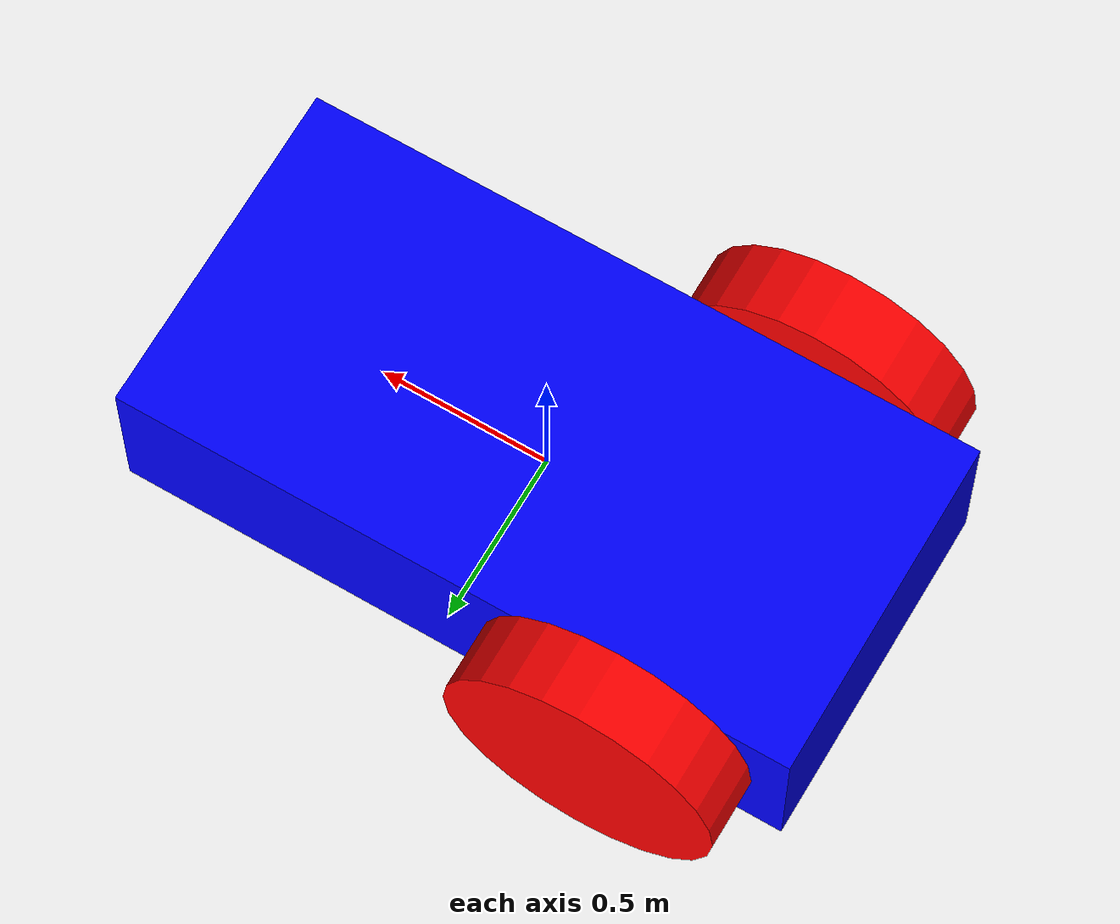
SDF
<?xml version="1.0"?>
<sdf version="1.10">
    <model name="clown_car" canonical_link="base_link">
        <pose>0 0 0 0 0 0</pose>

        <plugin filename="gz-sim-diff-drive-system" name="gz::sim::systems::DiffDrive">
            <left_joint>left_wheel_joint</left_joint>
            <right_joint>right_wheel_joint</right_joint>
            <wheel_separation>1.2</wheel_separation>
            <wheel_radius>0.4</wheel_radius>
            <odom_publish_frequency>10</odom_publish_frequency>
            <topic>/cmd_vel</topic>
            <odom_topic>/odom</odom_topic>
            <tf_topic>/tf</tf_topic>
            <frame_id>odom</frame_id>
            <child_frame_id>base_footprint</child_frame_id>
        </plugin>

        <plugin filename="gz-sim-joint-state-publisher-system" name="gz::sim::systems::JointStatePublisher">
            <topic>/joint_states</topic>
            <joint_name>left_wheel_joint</joint_name>
            <joint_name>right_wheel_joint</joint_name>
            <joint_name>caster_wheel</joint_name>
        </plugin>

        <link name="base_footprint">
            <inertial>
                <mass>0.01</mass>
                <inertia>
                    <ixx>0.0001</ixx>
                    <ixy>0</ixy>
                    <ixz>0</ixz>
                    <iyy>0.0001</iyy>
                    <iyz>0</iyz>
                    <izz>0.0001</izz>
                </inertia>
            </inertial>
        </link>

        <link name="base_link">
            <pose>0 0 0 0 0 0</pose>
            <inertial>
                <mass>1.14395</mass>
                <inertia>
                    <ixx>0.095329</ixx>
                    <ixy>0</ixy>
                    <ixz>0</ixz>
                    <iyy>0.381317</iyy>
                    <iyz>0</iyz>
                    <izz>0.476646</izz>
                </inertia>
            </inertial>
            <visual name="visual">
                <geometry>
                    <box>
                        <size>2.0 1.0 0.5</size>
                    </box>
                </geometry>
                <material>
                    <ambient>0 0 1 1</ambient>
                    <diffuse>0 0 1 1</diffuse>
                    <specular>0 0 1 1</specular>
                </material>
            </visual>
            <collision name="collision">
                <geometry>
                    <box>
                        <size>2.0 1.0 0.5</size>
                    </box>
                </geometry>
            </collision>
        </link>

        <link name="imu_link">
            <sensor name="imu_sensor" type="imu">
                <always_on>1</always_on>
                <update_rate>100</update_rate>
                <visualize>true</visualize>
                <topic>/imu</topic>
                <gz_frame_id>imu_link</gz_frame_id>
            </sensor>
        </link>

        <link name="lidar_link">
            <sensor name="gpu_lidar" type="gpu_lidar">
                <pose>0 0 0 0 0 0</pose>
                <topic>/scan</topic>
                <update_rate>10</update_rate>
                <gz_frame_id>base_link</gz_frame_id>
                <ray>
                    <scan>
                        <horizontal>
                            <samples>640</samples>
                            <resolution>1</resolution>
                            <min_angle>-1.396263</min_angle>
                            <max_angle>1.396263</max_angle>
                        </horizontal>
                        <vertical>
                            <samples>1</samples>
                            <resolution>0.01</resolution>
                            <min_angle>0</min_angle>
                            <max_angle>0</max_angle>
                        </vertical>
                    </scan>
                    <range>
                        <min>0.08</min>
                        <max>10.0</max>
                        <resolution>0.01</resolution>
                    </range>
                </ray>
                <always_on>1</always_on>
                <visualize>true</visualize>
            </sensor>
        </link>

        <link name="left_wheel">
            <pose>-0.5 0.6 0 -1.5707 0 0</pose>
            <inertial>
                <mass>1</mass>
                <inertia>
                    <ixx>0.043333</ixx>
                    <ixy>0</ixy>
                    <ixz>0</ixz>
                    <iyy>0.043333</iyy>
                    <iyz>0</iyz>
                    <izz>0.08</izz>
                </inertia>
            </inertial>
            <visual name="visual">
                <geometry>
                    <cylinder>
                        <radius>0.4</radius>
                        <length>0.2</length>
                    </cylinder>
                </geometry>
                <material>
                    <ambient>1 0 0 1</ambient>
                    <diffuse>1 0 0 1</diffuse>
                    <specular>1 0 0 1</specular>
                </material>
            </visual>
            <collision name="collision">
                <geometry>
                    <cylinder>
                        <radius>0.4</radius>
                        <length>0.2</length>
                    </cylinder>
                </geometry>
            </collision>
        </link>

        <link name="right_wheel">
            <pose>-0.5 -0.6 0 -1.5707 0 0</pose>
            <inertial>
                <mass>1</mass>
                <inertia>
                    <ixx>0.043333</ixx>
                    <ixy>0</ixy>
                    <ixz>0</ixz>
                    <iyy>0.043333</iyy>
                    <iyz>0</iyz>
                    <izz>0.08</izz>
                </inertia>
            </inertial>
            <visual name="visual">
                <geometry>
                    <cylinder>
                        <radius>0.4</radius>
                        <length>0.2</length>
                    </cylinder>
                </geometry>
                <material>
                    <ambient>1 0 0 1</ambient>
                    <diffuse>1 0 0 1</diffuse>
                    <specular>1 0 0 1</specular>
                </material>
            </visual>
            <collision name="collision">
                <geometry>
                    <cylinder>
                        <radius>0.4</radius>
                        <length>0.2</length>
                    </cylinder>
                </geometry>
            </collision>
        </link>

        <link name="caster">
            <pose>0.8 0 -0.2 0 0 0</pose>
            <inertial>
                <mass>1</mass>
                <inertia>
                    <ixx>0.016</ixx>
                    <ixy>0</ixy>
                    <ixz>0</ixz>
                    <iyy>0.016</iyy>
                    <iyz>0</iyz>
                    <izz>0.016</izz>
                </inertia>
            </inertial>
            <visual name="visual">
                <geometry>
                    <sphere>
                        <radius>0.2</radius>
                    </sphere>
                </geometry>
                <material>
                    <ambient>0 1 0 1</ambient>
                    <diffuse>0 1 0 1</diffuse>
                    <specular>0 1 0 1</specular>
                </material>
            </visual>
            <collision name="collision">
                <geometry>
                    <sphere>
                        <radius>0.2</radius>
                    </sphere>
                </geometry>
                <surface>
                    <friction>
                        <ode>
                            <mu>0.0</mu>
                            <mu2>0.0</mu2>
                        </ode>
                    </friction>
                </surface>
            </collision>
        </link>

        <joint name="base_footprint_joint" type="fixed">
            <parent>base_footprint</parent>
            <child>base_link</child>
        </joint>

        <joint name="imu_joint" type="fixed">
            <parent>base_link</parent>
            <child>imu_link</child>
            <pose>0 0 0.15 0 0 0</pose>
        </joint>

        <joint name="lidar_joint" type="fixed">
            <parent>base_link</parent>
            <child>lidar_link</child>
            <pose>0 0 0.25 0 0 0</pose>
        </joint>

        <joint name="left_wheel_joint" type="revolute">
            <parent>base_link</parent>
            <child>left_wheel</child>
            <axis>
                <xyz>0 0 1</xyz>
                <limit>
                    <lower>-1.79769e+308</lower>
                    <upper>1.79769e+308</upper>
                </limit>
            </axis>
        </joint>

        <joint name="right_wheel_joint" type="revolute">
            <parent>base_link</parent>
            <child>right_wheel</child>
            <axis>
                <xyz>0 0 1</xyz>
                <limit>
                    <lower>-1.79769e+308</lower>
                    <upper>1.79769e+308</upper>
                </limit>
            </axis>
        </joint>

        <joint name="caster_wheel" type="revolute">
            <parent>base_link</parent>
            <child>caster</child>
            <axis>
                <xyz>0 0 1</xyz>
                <limit>
                    <lower>-1.79769e+308</lower>
                    <upper>1.79769e+308</upper>
                </limit>
                <dynamics>
                    <damping>0.2</damping>
                    <friction>0.0</friction>
                </dynamics>
            </axis>
        </joint>
    </model>
</sdf>
